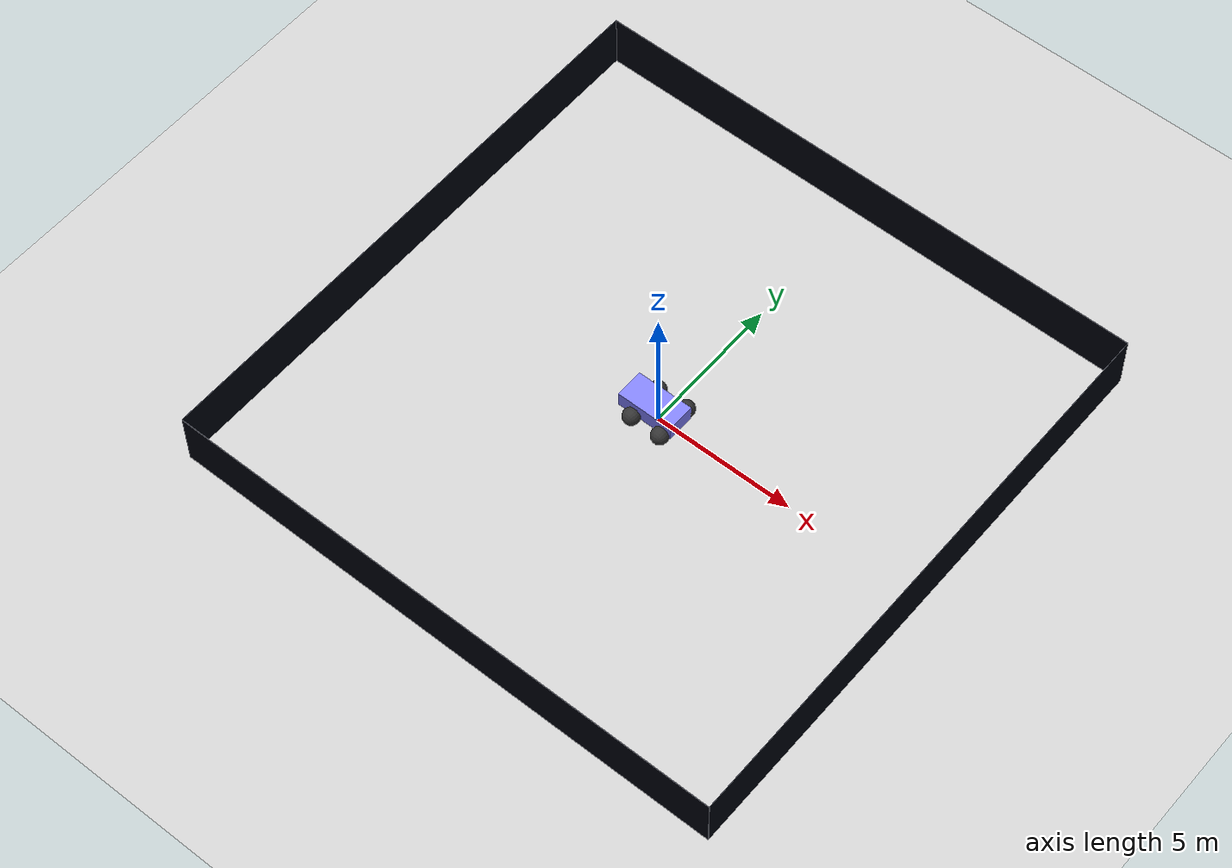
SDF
<?xml version="1.0" ?>
<sdf version="1.8">
  <world name="demo">
    <plugin
      filename="ignition-gazebo-physics-system"
      name="ignition::gazebo::systems::Physics">
    </plugin>
    <plugin
      filename="ignition-gazebo-sensors-system"
      name="ignition::gazebo::systems::Sensors">
      <render_engine>ogre2</render_engine>
      <output_type>sensor_msgs/msg/LaserScan</output_type>
    </plugin>
    <plugin
      filename="ignition-gazebo-scene-broadcaster-system"
      name="ignition::gazebo::systems::SceneBroadcaster">
    </plugin>
    <plugin
      filename="ignition-gazebo-user-commands-system"
      name="ignition::gazebo::systems::UserCommands">
    </plugin>
    <plugin
      filename="BasicSystem"
      name="ros_gz_example_gazebo::BasicSystem">
    </plugin>
    <plugin
      filename="FullSystem"
      name="ros_gz_example_gazebo::FullSystem">
    </plugin>

    <light name="sun" type="directional">
      <cast_shadows>true</cast_shadows>
      <pose>0 0 10 0 0 0</pose>
      <diffuse>0.8 0.8 0.8 1</diffuse>
      <specular>0.2 0.2 0.2 1</specular>
      <attenuation>
        <range>1000</range>
        <constant>0.9</constant>
        <linear>0.01</linear>
        <quadratic>0.001</quadratic>
      </attenuation>
      <direction>-0.5 0.1 -0.9</direction>
    </light>

    <model name="ground_plane">
      <static>true</static>
      <link name="link">
        <collision name="collision">
          <geometry>
            <plane>
              <normal>0 0 1</normal>
              <size>100 100</size>
            </plane>
          </geometry>
        </collision>
        <visual name="visual">
          <geometry>
            <plane>
              <normal>0 0 1</normal>
              <size>100 100</size>
            </plane>
          </geometry>
          <material>
            <ambient>0.8 0.8 0.8 1</ambient>
            <diffuse>0.8 0.8 0.8 1</diffuse>
            <specular>0.8 0.8 0.8 1</specular>
          </material>
        </visual>
      </link>
    </model>

    <model name='border'>
      <pose>0 0 1 0 0 0</pose>
      <static>true</static>
      <link name='wall1'>
          <pose>-10.005 0 0 0 0 0</pose>
          <static>true</static>
          <collision name='wall1_collision'>
              <geometry>
                  <box>
                      <size>0.01 20 2</size>
                  </box>
              </geometry>
          </collision>
          <visual name='wall1_visual'>
              <geometry>
                  <box>
                      <size>0.01 20 2</size>
                  </box>
              </geometry>
              <material>
                  <ambient>0.1 0.1 0.1 1</ambient>
                  <diffuse>0 0.01 0.05 1</diffuse>
                  <specular>0 0.01 0.05 1</specular>
              </material>
          </visual>
      </link>
      <link name='wall2'>
          <pose>10.005 0 0 0 0 0</pose>
          <static>true</static>
          <collision name='wall2_collision'>
              <geometry>
                  <box>
                      <size>0.01 20 2</size>
                  </box>
              </geometry>
          </collision>
          <visual name='wall2_visual'>
              <geometry>
                  <box>
                      <size>0.01 20 2</size>
                  </box>
              </geometry>
              <material>
                  <ambient>0.1 0.1 0.1 1</ambient>
                  <diffuse>0 0.01 0.05 1</diffuse>
                  <specular>0 0.01 0.05 1</specular>
              </material>
          </visual>
      </link>
      <link name='wall3'>
          <pose>0 10.005 0 0 0 0</pose>
          <static>true</static>
          <collision name='wall3_collision'>
              <geometry>
                  <box>
                      <size>20 0.01 2</size>
                  </box>
              </geometry>
          </collision>
          <visual name='wall3_visual'>
              <geometry>
                  <box>
                      <size>20 0.01 2</size>
                  </box>
              </geometry>
              <material>
                  <ambient>0.1 0.1 0.1 1</ambient>
                  <diffuse>0 0.01 0.05 1</diffuse>
                  <specular>0 0.01 0.05 1</specular>
              </material>
          </visual>
      </link>
      <link name='wall4'>
          <pose>0 -10.005 0 0 0 0</pose>
          <static>true</static>
          <collision name='wall4_collision'>
              <geometry>
                  <box>
                      <size>20 0.01 2</size>
                  </box>
              </geometry>
              <material>
                  <ambient>0.1 0.1 0.1 1</ambient>
                  <diffuse>0 0.01 0.05 1</diffuse>
                  <specular>0 0.01 0.05 1</specular>
              </material>
          </collision>
          <visual name='wall4_visual'>
              <geometry>
                  <box>
                      <size>20 0.01 2</size>
                  </box>
              </geometry>
              <material>
                  <ambient>0.1 0.1 0.1 1</ambient>
                  <diffuse>0 0.01 0.05 1</diffuse>
                  <specular>0 0.01 0.05 1</specular>
              </material>
          </visual>
      </link>
    </model>

    <model name="skid_steer">
      <self_collide>true</self_collide>
      <pose>0 0 0.35 0 0 0</pose>
      <include merge="true">
        <uri>package://ros_gz_example_description/models/skid_steer</uri>
      </include>

      <plugin
        filename="ignition-gazebo-joint-state-publisher-system"
        name="ignition::gazebo::systems::JointStatePublisher">
      </plugin>

      <plugin
        filename="ignition-gazebo-pose-publisher-system"
        name="ignition::gazebo::systems::PosePublisher">
        <publish_link_pose>true</publish_link_pose>
        <use_pose_vector_msg>true</use_pose_vector_msg>
        <static_publisher>true</static_publisher>
        <static_update_frequency>1</static_update_frequency>
      </plugin>

      <plugin
        filename="ignition-gazebo-odometry-publisher-system"
        name="ignition::gazebo::systems::OdometryPublisher">
        <odom_frame>skid_steer/odom</odom_frame>
        <robot_base_frame>skid_steer</robot_base_frame>
      </plugin>
    </model>

  </world>
</sdf>

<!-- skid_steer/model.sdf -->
<sdf version="1.8">
    <model name='skid_steer'>
      <link name='chassis'>
        <pose>-0.151427 -0 0.175 0 -0 0</pose>
        <inertial>
          <mass>1.14395</mass>
          <inertia>
            <ixx>0.126164</ixx>
            <ixy>0</ixy>
            <ixz>0</ixz>
            <iyy>0.416519</iyy>
            <iyz>0</iyz>
            <izz>0.481014</izz>
          </inertia>
        </inertial>
        <visual name='visual_chassis'>
          <geometry>
            <box>
              <size>2.01142 1 0.568726</size>
            </box>
          </geometry>
          <material>
            <ambient>0.5 0.5 1.0 1</ambient>
            <diffuse>0.5 0.5 1.0 1</diffuse>
            <specular>0.0 0.0 1.0 1</specular>
          </material>
        </visual>
        <collision name='collision_chassis'>
          <geometry>
            <box>
              <size>2.01142 1 0.568726</size>
            </box>
          </geometry>
        </collision>
      </link>

      <link name='left_front_wheel'>
        <pose>0.554283 0.625029 -0.025 -1.5707 0 0</pose>
        <inertial>
          <mass>2</mass>
          <inertia>
            <ixx>0.145833</ixx>
            <ixy>0</ixy>
            <ixz>0</ixz>
            <iyy>0.145833</iyy>
            <iyz>0</iyz>
            <izz>0.125</izz>
          </inertia>
        </inertial>
        <visual name='visual_left_front_wheel'>
          <geometry>
            <sphere>
              <radius>0.3</radius>
            </sphere>
          </geometry>
          <material>
            <ambient>0.2 0.2 0.2 1</ambient>
            <diffuse>0.2 0.2 0.2 1</diffuse>
            <specular>0.2 0.2 0.2 1</specular>
          </material>
        </visual>
        <collision name='collision_left_front_wheel'>
          <geometry>
            <sphere>
              <radius>0.3</radius>
            </sphere>
          </geometry>
          <surface>
            <friction>
              <ode>
                <mu>0.5</mu>
                <mu2>0.2</mu2>
              </ode>
            </friction>
          </surface>
        </collision>
      </link>

      <link name='left_rear_wheel'>
        <pose>-0.554283 0.625029 -0.025 -1.5707 0 0</pose>
        <inertial>
          <mass>2</mass>
          <inertia>
            <ixx>0.145833</ixx>
            <ixy>0</ixy>
            <ixz>0</ixz>
            <iyy>0.145833</iyy>
            <iyz>0</iyz>
            <izz>0.125</izz>
          </inertia>
        </inertial>
        <visual name='visual_left_rear_wheel'>
          <geometry>
            <sphere>
              <radius>0.3</radius>
            </sphere>
          </geometry>
          <material>
            <ambient>0.2 0.2 0.2 1</ambient>
            <diffuse>0.2 0.2 0.2 1</diffuse>
            <specular>0.2 0.2 0.2 1</specular>
          </material>
        </visual>
        <collision name='collision_left_rear_wheel'>
          <geometry>
            <sphere>
              <radius>0.3</radius>
            </sphere>
          </geometry>
        </collision>
      </link>

      <link name='right_front_wheel'>
        <pose>0.554282 -0.625029 -0.025 -1.5707 0 0</pose>
        <inertial>
          <mass>2</mass>
          <inertia>
            <ixx>0.145833</ixx>
            <ixy>0</ixy>
            <ixz>0</ixz>
            <iyy>0.145833</iyy>
            <iyz>0</iyz>
            <izz>0.125</izz>
          </inertia>
        </inertial>
        <visual name='visual_right_front_wheel'>
          <geometry>
            <sphere>
              <radius>0.3</radius>
            </sphere>
          </geometry>
          <material>
            <ambient>0.2 0.2 0.2 1</ambient>
            <diffuse>0.2 0.2 0.2 1</diffuse>
            <specular>0.2 0.2 0.2 1</specular>
          </material>
        </visual>
        <collision name='collision_right_front_wheel'>
          <geometry>
            <sphere>
              <radius>0.3</radius>
            </sphere>
          </geometry>
          <surface>
            <friction>
              <ode>
                <mu>0.5</mu>
                <mu2>0.2</mu2>
              </ode>
            </friction>
          </surface>
        </collision>
      </link>

      <link name='right_rear_wheel'>
        <pose>-0.554282 -0.625029 -0.025 -1.5707 0 0</pose>
        <inertial>
          <mass>2</mass>
          <inertia>
            <ixx>0.145833</ixx>
            <ixy>0</ixy>
            <ixz>0</ixz>
            <iyy>0.145833</iyy>
            <iyz>0</iyz>
            <izz>0.125</izz>
          </inertia>
        </inertial>
        <visual name='visual_right_rear_wheel'>
          <geometry>
            <sphere>
              <radius>0.3</radius>
            </sphere>
          </geometry>
          <material>
            <ambient>0.2 0.2 0.2 1</ambient>
            <diffuse>0.2 0.2 0.2 1</diffuse>
            <specular>0.2 0.2 0.2 1</specular>
          </material>
        </visual>
        <collision name='collision_right_rear_wheel'>
          <geometry>
            <sphere>
              <radius>0.3</radius>
            </sphere>
          </geometry>
        </collision>
      </link>

      <link name="lidar_link">
        <pose>0 0 0.5 0 0 0</pose>
        <inertial>
          <mass>0.1</mass>
          <inertia>
            <ixx>0.000166667</ixx>
            <iyy>0.000166667</iyy>
            <izz>0.000166667</izz>
          </inertia>
        </inertial>
        <collision name="collision">
          <geometry>
            <box>
              <size>0.1 0.1 0.1</size>
            </box>
          </geometry>
        </collision>
        <visual name="visual">
          <geometry>
            <box>
              <size>0.1 0.1 0.1</size>
            </box>
          </geometry>
        </visual>
        <sensor name='gpu_lidar' type='gpu_lidar'>
          <pose>0 0 0 0 0 0</pose>
          <topic>scan</topic>
          <ignition_frame_id>skid_steer/lidar_link</ignition_frame_id>
          <update_rate>10</update_rate>
          <lidar>
            <scan>
              <horizontal>
                <samples>640</samples>
                <resolution>1</resolution>
                <min_angle>-1.396263</min_angle>
                <max_angle>1.396263</max_angle>
              </horizontal>
              <vertical>
                <samples>1</samples>
                <resolution>1</resolution>
                <min_angle>0.0</min_angle>
                <max_angle>0.0</max_angle>
              </vertical>
            </scan>
            <range>
              <min>0.08</min>
              <max>10.0</max>
              <resolution>0.01</resolution>
            </range>
          </lidar>
          <visualize>true</visualize>
        </sensor>
      </link>

      <joint name='lidar_joint' type='fixed'>
        <parent>chassis</parent>
        <child>lidar_link</child>
      </joint>

      <joint name='left_front_wheel_joint' type='revolute'>
        <parent>chassis</parent>
        <child>left_front_wheel</child>
        <axis>
          <xyz>0 0 1</xyz>
          <limit>
            <lower>-1.79769e+308</lower>
            <upper>1.79769e+308</upper>
          </limit>
        </axis>
      </joint>

      <joint name='left_rear_wheel_joint' type='revolute'>
        <parent>chassis</parent>
        <child>left_rear_wheel</child>
        <axis>
          <xyz>0 0 1</xyz>
          <limit>
            <lower>-1.79769e+308</lower>
            <upper>1.79769e+308</upper>
          </limit>
        </axis>
      </joint>

      <joint name='right_front_wheel_joint' type='revolute'>
        <parent>chassis</parent>
        <child>right_front_wheel</child>
        <axis>
          <xyz>0 0 1</xyz>
          <limit>
            <lower>-1.79769e+308</lower>
            <upper>1.79769e+308</upper>
          </limit>
        </axis>
      </joint>

      <joint name='right_rear_wheel_joint' type='revolute'>
        <parent>chassis</parent>
        <child>right_rear_wheel</child>
        <axis>
          <xyz>0 0 1</xyz>
          <limit>
            <lower>-1.79769e+308</lower>
            <upper>1.79769e+308</upper>
          </limit>
        </axis>
      </joint>

      <plugin
        filename="ignition-gazebo-diff-drive-system"
        name="ignition::gazebo::systems::DiffDrive">
        <left_joint>left_rear_wheel_joint</left_joint>
        <right_joint>right_rear_wheel_joint</right_joint>
        <wheel_separation>1.25</wheel_separation>
        <wheel_radius>0.3</wheel_radius>
        <odom_publish_frequency>1</odom_publish_frequency>
        <max_linear_acceleration>1</max_linear_acceleration>
        <min_linear_acceleration>-1</min_linear_acceleration>
        <max_angular_acceleration>2</max_angular_acceleration>
        <min_angular_acceleration>-2</min_angular_acceleration>
        <max_linear_velocity>0.5</max_linear_velocity>
        <min_linear_velocity>-0.5</min_linear_velocity>
        <max_angular_velocity>2</max_angular_velocity>
        <min_angular_velocity>-2</min_angular_velocity>
      </plugin>
    </model>
</sdf>
